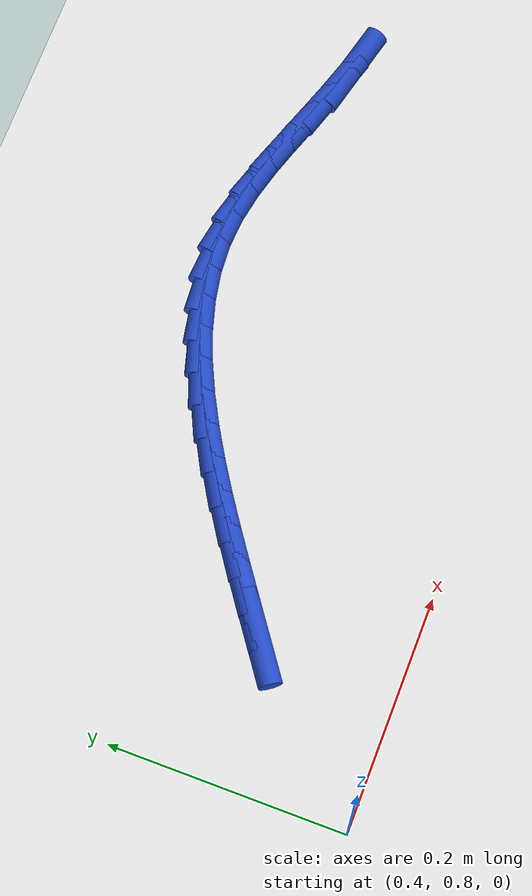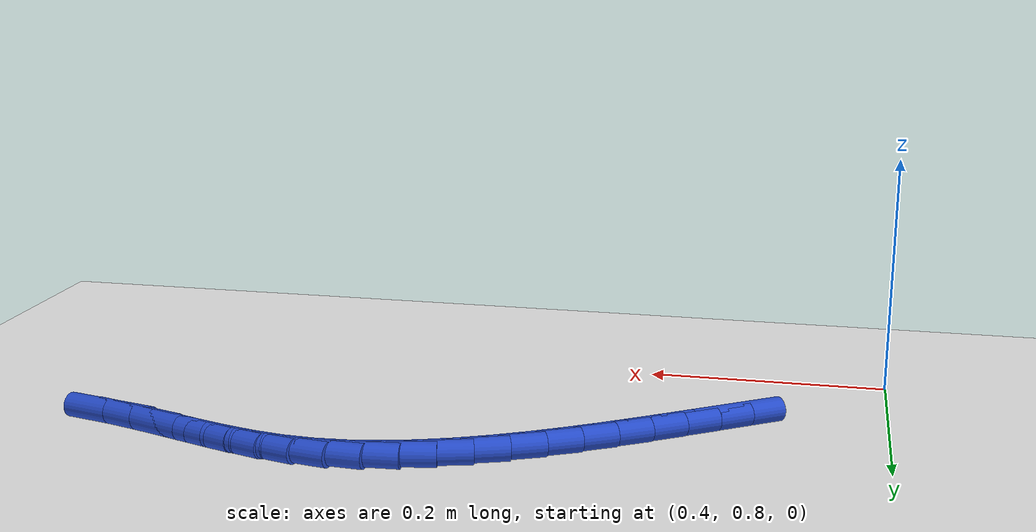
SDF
<sdf version="1.6">
 <world name="default">
  <model name="ground_plane">
   <static>1</static>
   <link name="link">
    <collision name="collision">
     <geometry><plane><normal>0 0 1</normal><size>100 100</size></plane></geometry>
     <surface><friction><ode><mu>100</mu><mu2>50</mu2></ode></friction></surface>
    </collision>
    <visual name="visual">
     <cast_shadows>0</cast_shadows>
     <geometry><plane><normal>0 0 1</normal><size>100 100</size></plane></geometry>
     <material>
      <script><uri>file://media/materials/scripts/gazebo.material</uri><name>Gazebo/WhiteGlow</name></script>
     </material>
    </visual>
   </link>
  </model>
  <model name="line">
   <link name="link_39">
    <pose>0.5190704814648276 0.9191187836232511 0.01 0 1.57 0.6192305894937531</pose>
    <collision name="collision">
     <geometry><cylinder><radius>0.01</radius><length>0.08</length></cylinder></geometry>
    </collision>
    <visual name="visual">
     <material>
      <script><name>Gazebo/Blue</name><uri>file://media/materials/scripts/gazebo.material</uri></script>
     </material>
     <geometry><cylinder><radius>0.01</radius><length>0.08</length></cylinder></geometry>
    </visual>
   </link>
   <link name="link_40">
    <pose>0.5432557875197632 0.9363568143483496 0.01 0 1.57 0.6175171602868582</pose>
    <collision name="collision">
     <geometry><cylinder><radius>0.01</radius><length>0.08</length></cylinder></geometry>
    </collision>
    <visual name="visual">
     <material>
      <script><name>Gazebo/Blue</name><uri>file://media/materials/scripts/gazebo.material</uri></script>
     </material>
     <geometry><cylinder><radius>0.01</radius><length>0.08</length></cylinder></geometry>
    </visual>
   </link>
   <link name="link_41">
    <pose>0.5677122469877177 0.9537249939026862 0.01 0 1.57 0.6101948304587183</pose>
    <collision name="collision">
     <geometry><cylinder><radius>0.01</radius><length>0.08</length></cylinder></geometry>
    </collision>
    <visual name="visual">
     <material>
      <script><name>Gazebo/Blue</name><uri>file://media/materials/scripts/gazebo.material</uri></script>
     </material>
     <geometry><cylinder><radius>0.01</radius><length>0.08</length></cylinder></geometry>
    </visual>
   </link>
   <link name="link_42">
    <pose>0.5924103393375251 0.9709941199976754 0.01 0 1.57 0.5942359306977779</pose>
    <collision name="collision">
     <geometry><cylinder><radius>0.01</radius><length>0.08</length></cylinder></geometry>
    </collision>
    <visual name="visual">
     <material>
      <script><name>Gazebo/Blue</name><uri>file://media/materials/scripts/gazebo.material</uri></script>
     </material>
     <geometry><cylinder><radius>0.01</radius><length>0.08</length></cylinder></geometry>
    </visual>
   </link>
   <link name="link_43">
    <pose>0.6173387372197593 0.9878384391321205 0.01 0 1.57 0.5692951589650832</pose>
    <collision name="collision">
     <geometry><cylinder><radius>0.01</radius><length>0.08</length></cylinder></geometry>
    </collision>
    <visual name="visual">
     <material>
      <script><name>Gazebo/Blue</name><uri>file://media/materials/scripts/gazebo.material</uri></script>
     </material>
     <geometry><cylinder><radius>0.01</radius><length>0.08</length></cylinder></geometry>
    </visual>
   </link>
   <link name="link_44">
    <pose>0.6424861262633675 1.0039321289285994 0.01 0 1.57 0.5347219308818583</pose>
    <collision name="collision">
     <geometry><cylinder><radius>0.01</radius><length>0.08</length></cylinder></geometry>
    </collision>
    <visual name="visual">
     <material>
      <script><name>Gazebo/Blue</name><uri>file://media/materials/scripts/gazebo.material</uri></script>
     </material>
     <geometry><cylinder><radius>0.01</radius><length>0.08</length></cylinder></geometry>
    </visual>
   </link>
   <link name="link_45">
    <pose>0.6678411920972974 1.0189493670096905 0.01 0 1.57 0.48957746124027746</pose>
    <collision name="collision">
     <geometry><cylinder><radius>0.01</radius><length>0.08</length></cylinder></geometry>
    </collision>
    <visual name="visual">
     <material>
      <script><name>Gazebo/Blue</name><uri>file://media/materials/scripts/gazebo.material</uri></script>
     </material>
     <geometry><cylinder><radius>0.01</radius><length>0.08</length></cylinder></geometry>
    </visual>
   </link>
   <link name="link_46">
    <pose>0.6933926203504956 1.032564330997971 0.01 0 1.57 0.43267981591451365</pose>
    <collision name="collision">
     <geometry><cylinder><radius>0.01</radius><length>0.08</length></cylinder></geometry>
    </collision>
    <visual name="visual">
     <material>
      <script><name>Gazebo/Blue</name><uri>file://media/materials/scripts/gazebo.material</uri></script>
     </material>
     <geometry><cylinder><radius>0.01</radius><length>0.08</length></cylinder></geometry>
    </visual>
   </link>
   <link name="link_47">
    <pose>0.7191290966519098 1.0444511985160199 0.01 0 1.57 0.3627108363635189</pose>
    <collision name="collision">
     <geometry><cylinder><radius>0.01</radius><length>0.08</length></cylinder></geometry>
    </collision>
    <visual name="visual">
     <material>
      <script><name>Gazebo/Blue</name><uri>file://media/materials/scripts/gazebo.material</uri></script>
     </material>
     <geometry><cylinder><radius>0.01</radius><length>0.08</length></cylinder></geometry>
    </visual>
   </link>
   <link name="link_48">
    <pose>0.7450393066304872 1.0542841471864146 0.01 0 1.57 0.2784374072638288</pose>
    <collision name="collision">
     <geometry><cylinder><radius>0.01</radius><length>0.08</length></cylinder></geometry>
    </collision>
    <visual name="visual">
     <material>
      <script><name>Gazebo/Blue</name><uri>file://media/materials/scripts/gazebo.material</uri></script>
     </material>
     <geometry><cylinder><radius>0.01</radius><length>0.08</length></cylinder></geometry>
    </visual>
   </link>
   <link name="link_49">
    <pose>0.7711119359151745 1.0617373546317332 0.01 0 1.57 0.17910377213596543</pose>
    <collision name="collision">
     <geometry><cylinder><radius>0.01</radius><length>0.08</length></cylinder></geometry>
    </collision>
    <visual name="visual">
     <material>
      <script><name>Gazebo/Blue</name><uri>file://media/materials/scripts/gazebo.material</uri></script>
     </material>
     <geometry><cylinder><radius>0.01</radius><length>0.08</length></cylinder></geometry>
    </visual>
   </link>
   <link name="link_50">
    <pose>0.79733567013492 1.0664849984745546 0.01 0 1.57 0.0650079812459088</pose>
    <collision name="collision">
     <geometry><cylinder><radius>0.01</radius><length>0.08</length></cylinder></geometry>
    </collision>
    <visual name="visual">
     <material>
      <script><name>Gazebo/Blue</name><uri>file://media/materials/scripts/gazebo.material</uri></script>
     </material>
     <geometry><cylinder><radius>0.01</radius><length>0.08</length></cylinder></geometry>
    </visual>
   </link>
   <link name="link_51">
    <pose>0.8236991949186696 1.0682012563374554 0.01 0 1.57 -0.061111362508018456</pose>
    <collision name="collision">
     <geometry><cylinder><radius>0.01</radius><length>0.08</length></cylinder></geometry>
    </collision>
    <visual name="visual">
     <material>
      <script><name>Gazebo/Blue</name><uri>file://media/materials/scripts/gazebo.material</uri></script>
     </material>
     <geometry><cylinder><radius>0.01</radius><length>0.08</length></cylinder></geometry>
    </visual>
   </link>
   <link name="link_52">
    <pose>0.8501913987057045 1.0665802632460781 0.01 0 1.57 -0.17630340702647132</pose>
    <collision name="collision">
     <geometry><cylinder><radius>0.01</radius><length>0.08</length></cylinder></geometry>
    </collision>
    <visual name="visual">
     <material>
      <script><name>Gazebo/Blue</name><uri>file://media/materials/scripts/gazebo.material</uri></script>
     </material>
     <geometry><cylinder><radius>0.01</radius><length>0.08</length></cylinder></geometry>
    </visual>
   </link>
   <link name="link_53">
    <pose>0.8768064801748737 1.0618387044830315 0.01 0 1.57 -0.25902541707026466</pose>
    <collision name="collision">
     <geometry><cylinder><radius>0.01</radius><length>0.08</length></cylinder></geometry>
    </collision>
    <visual name="visual">
     <material>
      <script><name>Gazebo/Blue</name><uri>file://media/materials/scripts/gazebo.material</uri></script>
     </material>
     <geometry><cylinder><radius>0.01</radius><length>0.08</length></cylinder></geometry>
    </visual>
   </link>
   <link name="link_54">
    <pose>0.9035443337864383 1.0547537545518695 0.01 0 1.57 -0.31065342686190267</pose>
    <collision name="collision">
     <geometry><cylinder><radius>0.01</radius><length>0.08</length></cylinder></geometry>
    </collision>
    <visual name="visual">
     <material>
      <script><name>Gazebo/Blue</name><uri>file://media/materials/scripts/gazebo.material</uri></script>
     </material>
     <geometry><cylinder><radius>0.01</radius><length>0.08</length></cylinder></geometry>
    </visual>
   </link>
   <link name="link_55">
    <pose>0.9304051340381215 1.0461301448387874 0.01 0 1.57 -0.3338051287900811</pose>
    <collision name="collision">
     <geometry><cylinder><radius>0.01</radius><length>0.08</length></cylinder></geometry>
    </collision>
    <visual name="visual">
     <material>
      <script><name>Gazebo/Blue</name><uri>file://media/materials/scripts/gazebo.material</uri></script>
     </material>
     <geometry><cylinder><radius>0.01</radius><length>0.08</length></cylinder></geometry>
    </visual>
   </link>
   <link name="link_56">
    <pose>0.9573890554276485 1.0367726067299807 0.01 0 1.57 -0.3300607233329601</pose>
    <collision name="collision">
     <geometry><cylinder><radius>0.01</radius><length>0.08</length></cylinder></geometry>
    </collision>
    <visual name="visual">
     <material>
      <script><name>Gazebo/Blue</name><uri>file://media/materials/scripts/gazebo.material</uri></script>
     </material>
     <geometry><cylinder><radius>0.01</radius><length>0.08</length></cylinder></geometry>
    </visual>
   </link>
   <link name="link_57">
    <pose>0.9844962724527424 1.027485871611645 0.01 0 1.57 -0.299589780737403</pose>
    <collision name="collision">
     <geometry><cylinder><radius>0.01</radius><length>0.08</length></cylinder></geometry>
    </collision>
    <visual name="visual">
     <material>
      <script><name>Gazebo/Blue</name><uri>file://media/materials/scripts/gazebo.material</uri></script>
     </material>
     <geometry><cylinder><radius>0.01</radius><length>0.08</length></cylinder></geometry>
    </visual>
   </link>
   <link name="link_58">
    <pose>1.011726959611128 1.0190746708699765 0.01 0 1.57 -0.24128502930555937</pose>
    <collision name="collision">
     <geometry><cylinder><radius>0.01</radius><length>0.08</length></cylinder></geometry>
    </collision>
    <visual name="visual">
     <material>
      <script><name>Gazebo/Blue</name><uri>file://media/materials/scripts/gazebo.material</uri></script>
     </material>
     <geometry><cylinder><radius>0.01</radius><length>0.08</length></cylinder></geometry>
    </visual>
   </link>
  </model>
 </world>
</sdf>
